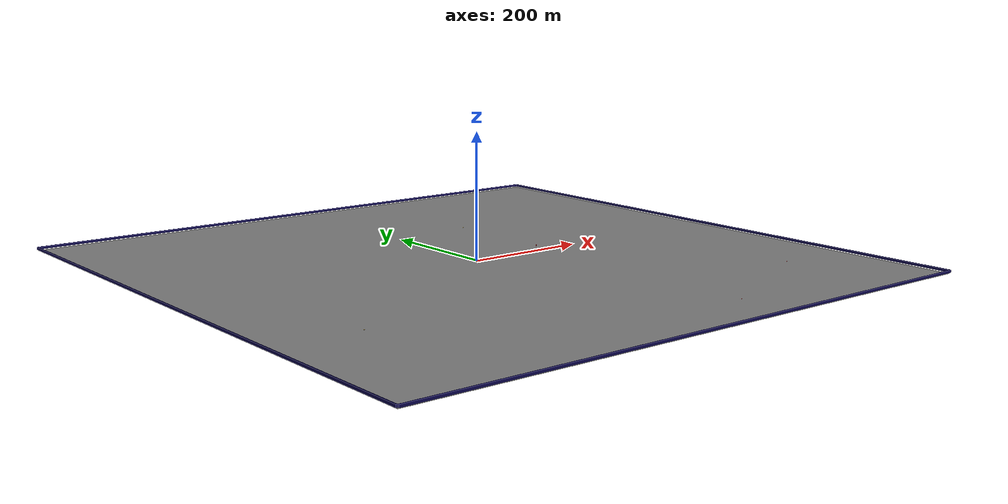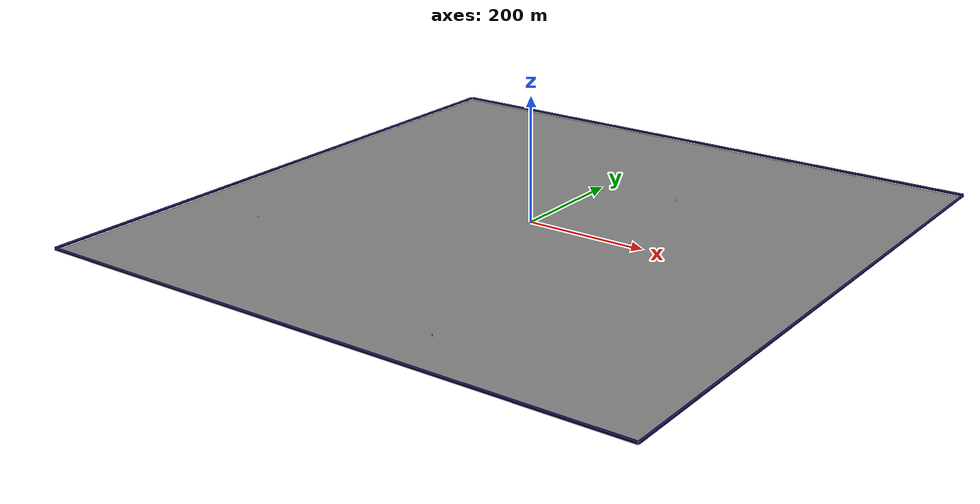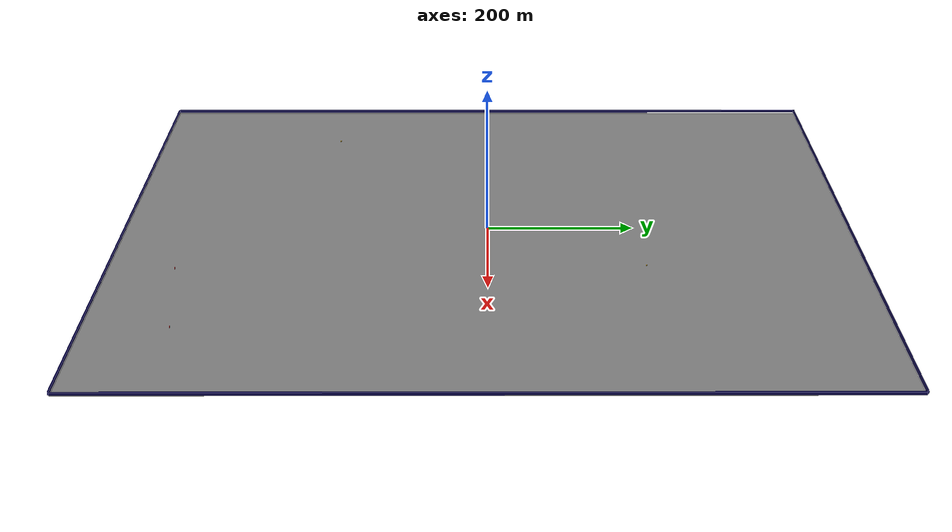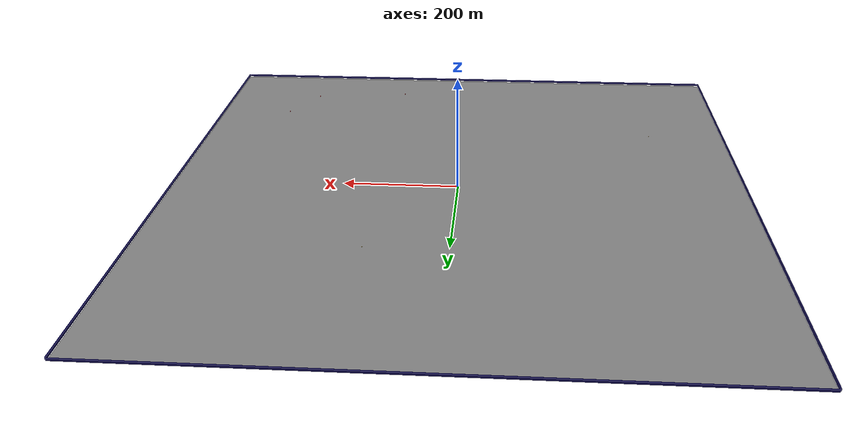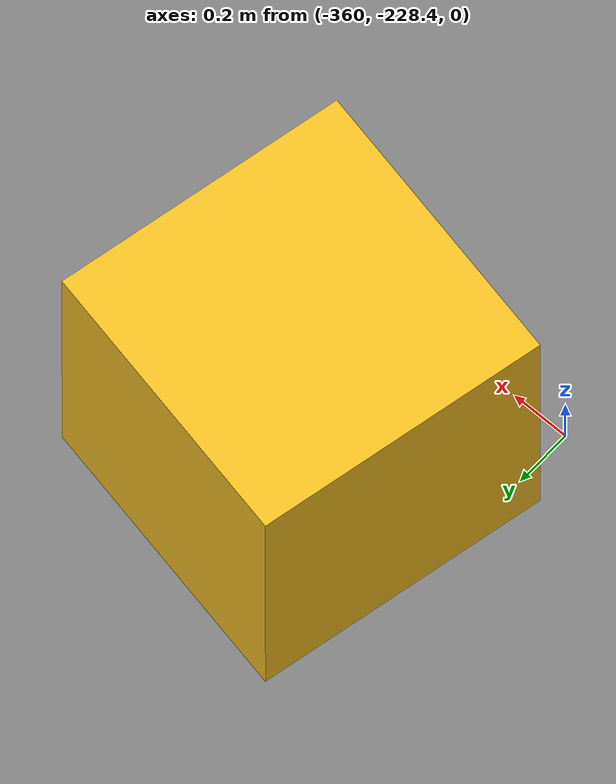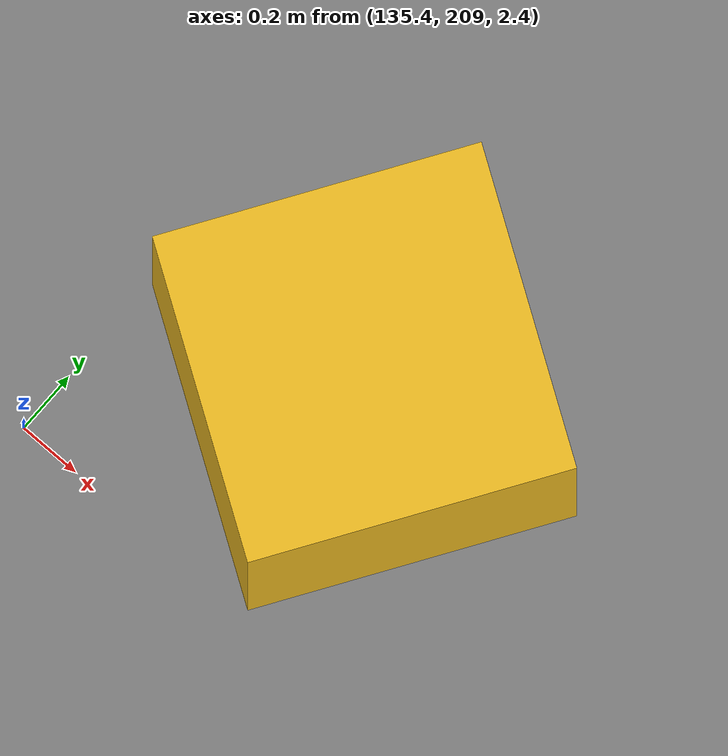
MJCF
<mujoco model="unnamed_model">
  <default>
    <default class="/" />
    <default class="border/" />
    <default class="border_1/" />
    <default class="border_2/" />
    <default class="border_3/" />
    <default class="agentplaceholder/" />
    <default class="placeholder_box/" />
    <default class="stone0/" />
    <default class="stone1/" />
    <default class="tree/" />
    <default class="tree_1/" />
  </default>
  <worldbody>
    <body name="border/">
      <body name="border/border" pos="0 501 2">
        <geom name="border/border_geom" class="border/" type="box" size="500 1 2" rgba="0.035000000000000003 0.016 0.28999999999999998 1" />
      </body>
    </body>
    <body name="border_1/">
      <body name="border_1/border" pos="0 -501 2">
        <geom name="border_1/border_geom" class="border_1/" type="box" size="500 1 2" rgba="0.035000000000000003 0.016 0.28999999999999998 1" />
      </body>
    </body>
    <body name="border_2/">
      <body name="border_2/border" pos="501 0 2">
        <geom name="border_2/border_geom" class="border_2/" type="box" size="1 500 2" rgba="0.035000000000000003 0.016 0.28999999999999998 1" />
      </body>
    </body>
    <body name="border_3/">
      <body name="border_3/border" pos="-501 0 2">
        <geom name="border_3/border_geom" class="border_3/" type="box" size="1 500 2" rgba="0.035000000000000003 0.016 0.28999999999999998 1" />
      </body>
    </body>
    <body euler="0 0 -122.98558804066411" name="agentplaceholder/">
      <joint name="agentplaceholder/boxagent_freeJoint/" class="/" type="free" />
      <body name="agentplaceholder/agentplaceholder" pos="-250 0 3" euler="0 0 0">
        <geom name="agentplaceholder/boxagent_geom" class="agentplaceholder/" type="box" size="0.5 0.5 0.5" rgba="0.94899999999999995 0.74509999999999998 0.1333 1" euler="0 0 0" />
      </body>
    </body>
    <body name="placeholder_box/">
      <body name="placeholder_box/placeholder_box" pos="-359.49144999999999 -227.80709999999999 0.5" euler="0 0 78.004220881423294">
        <geom name="placeholder_box/box_geom" class="placeholder_box/" type="box" size="0.5 0.5 0.5" rgba="0.94899999999999995 0.74509999999999998 0.1333 1" euler="0 0 0" />
      </body>
    </body>
    <body name="stone0/">
      <body name="stone0/stone0" pos="319.09059999999999 -390.86529999999999 0.10000000000000001" euler="0 0 -154.05372461252429">
        <geom name="stone0/stone_geom" class="stone0/" type="box" size="0.10000000000000001 0.10000000000000001 2" rgba="1 0 0 1" />
      </body>
    </body>
    <body name="stone1/">
      <body name="stone1/stone1" pos="138.11775 -412.01710000000003 0.10000000000000001" euler="0 0 39.922286035789369">
        <geom name="stone1/stone_geom" class="stone1/" type="box" size="0.10000000000000001 0.10000000000000001 2" rgba="1 0 0 1" />
      </body>
    </body>
    <body name="tree/">
      <body name="tree/tree" pos="365.22964999999999 -305.62040000000002 0.10000000000000001" euler="0 0 53.976969634835143">
        <geom name="tree/tree_geom" class="tree/" type="box" size="0.10000000000000001 0.10000000000000001 2" rgba="1 0 0 1" />
      </body>
    </body>
    <body name="tree_1/">
      <body name="tree_1/tree" pos="148.72980000000001 31.161200000000008 0.10000000000000001" euler="0 0 -177.15629344312242">
        <geom name="tree_1/tree_geom" class="tree_1/" type="box" size="0.10000000000000001 0.10000000000000001 2" rgba="1 0 0 1" />
      </body>
    </body>
    <geom name="base_plane" class="/" type="plane" size="500 500 0.10000000000000001" />
  </worldbody>
</mujoco>
